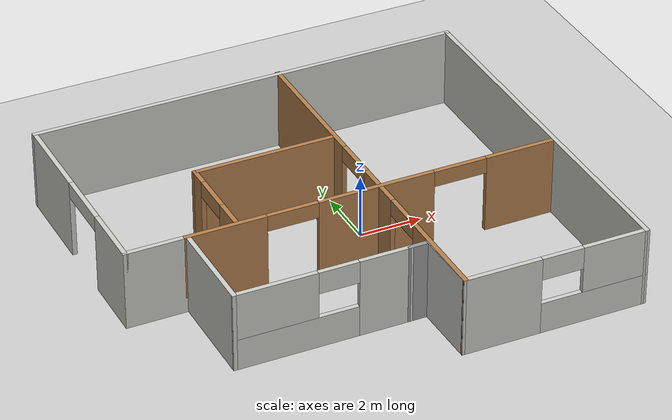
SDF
<sdf version="1.6">
 <world name="default">
  <light name="sun" type="directional">
   <pose>0 0 10 0 -0 0</pose>
   <diffuse>0.8 0.8 0.8 1</diffuse>
   <specular>0.2 0.2 0.2 1</specular>
   <attenuation>
    <range>1000</range>
    <constant>0.9</constant>
    <linear>0.01</linear>
    <quadratic>0.001</quadratic>
   </attenuation>
   <direction>-0.5 0.1 -0.9</direction>
  </light>
  <model name="ground_plane">
   <static>1</static>
   <link name="link">
    <collision name="collision">
     <geometry><plane><normal>0 0 1</normal><size>100 100</size></plane></geometry>
     <surface>
      <contact><collide_bitmask>65535</collide_bitmask></contact>
      <friction><ode><mu>100</mu><mu2>50</mu2></ode></friction>
     </surface>
    </collision>
    <visual name="visual">
     <cast_shadows>0</cast_shadows>
     <geometry><plane><normal>0 0 1</normal><size>100 100</size></plane></geometry>
     <material>
      <script><uri>file://media/materials/scripts/gazebo.material</uri><name>Gazebo/Grey</name></script>
     </material>
    </visual>
   </link>
  </model>
  <gravity>0 0 -9.8</gravity>
  <magnetic_field>6e-06 2.3e-05 -4.2e-05</magnetic_field>
  <atmosphere type="adiabatic"/>
  <physics name="default_physics" default="0" type="ode">
   <max_step_size>0.001</max_step_size>
   <real_time_factor>1</real_time_factor>
   <real_time_update_rate>1000</real_time_update_rate>
  </physics>
  <scene><ambient>0.4 0.4 0.4 1</ambient><background>0.7 0.7 0.7 1</background><shadows>1</shadows></scene>
  <audio><device>default</device></audio>
  <spherical_coordinates>
   <surface_model>EARTH_WGS84</surface_model>
   <latitude_deg>0</latitude_deg>
   <longitude_deg>0</longitude_deg>
   <elevation>0</elevation>
   <heading_deg>0</heading_deg>
  </spherical_coordinates>
  <model name="hotel_raven">
   <pose>-1.09481 -0.450261 0 0 -0 0</pose>
   <link name="Wall_1">
    <collision name="Wall_1_Collision">
     <geometry><box><size>13.75 0.15 2.5</size></box></geometry>
     <pose>0 0 1.25 0 -0 0</pose>
    </collision>
    <visual name="Wall_1_Visual">
     <pose>0 0 1.25 0 -0 0</pose>
     <geometry><box><size>13.75 0.15 2.5</size></box></geometry>
     <material>
      <script><uri>file://media/materials/scripts/gazebo.material</uri><name>Gazebo/CeilingTiled</name></script>
      <ambient>0.435294 0.796078 0.67451 1</ambient>
     </material>
     <meta><layer>0</layer></meta>
    </visual>
    <pose>-0.000193 6.03026 0 0 -0 0</pose>
   </link>
   <link name="Wall_10">
    <collision name="Wall_10_Collision">
     <geometry><box><size>2 0.15 2.5</size></box></geometry>
     <pose>0 0 1.25 0 -0 0</pose>
    </collision>
    <visual name="Wall_10_Visual">
     <pose>0 0 1.25 0 -0 0</pose>
     <geometry><box><size>2 0.15 2.5</size></box></geometry>
     <material>
      <script><uri>file://media/materials/scripts/gazebo.material</uri><name>Gazebo/CeilingTiled</name></script>
      <ambient>0.435294 0.796078 0.67451 1</ambient>
     </material>
     <meta><layer>0</layer></meta>
    </visual>
    <pose>-5.87519 -0.819739 0 0 -0 0</pose>
   </link>
   <link name="Wall_13">
    <pose>1.08781 0.020261 0 0 -0 -1.5708</pose>
    <visual name="Wall_13_Visual_0">
     <pose>-3.79716 0 1.25 0 -0 0</pose>
     <geometry><box><size>4.65569 0.15 2.5</size></box></geometry>
     <material>
      <script><uri>file://media/materials/scripts/gazebo.material</uri><name>Gazebo/Wood</name></script>
      <ambient>1 1 1 1</ambient>
     </material>
     <meta><layer>0</layer></meta>
    </visual>
    <collision name="Wall_13_Collision_0">
     <geometry><box><size>4.65569 0.15 2.5</size></box></geometry>
     <pose>-3.79716 0 1.25 0 -0 0</pose>
    </collision>
    <visual name="Wall_13_Visual_1">
     <pose>0.816104 0 1.25 0 -0 0</pose>
     <geometry><box><size>1.70682 0.15 2.5</size></box></geometry>
     <material>
      <script><uri>file://media/materials/scripts/gazebo.material</uri><name>Gazebo/Wood</name></script>
      <ambient>1 1 1 1</ambient>
     </material>
     <meta><layer>0</layer></meta>
    </visual>
    <collision name="Wall_13_Collision_1">
     <geometry><box><size>1.70682 0.15 2.5</size></box></geometry>
     <pose>0.816104 0 1.25 0 -0 0</pose>
    </collision>
    <visual name="Wall_13_Visual_2">
     <pose>4.58666 0 1.25 0 -0 0</pose>
     <geometry><box><size>3.07668 0.15 2.5</size></box></geometry>
     <material>
      <script><uri>file://media/materials/scripts/gazebo.material</uri><name>Gazebo/Wood</name></script>
      <ambient>1 1 1 1</ambient>
     </material>
     <meta><layer>0</layer></meta>
    </visual>
    <collision name="Wall_13_Collision_2">
     <geometry><box><size>3.07668 0.15 2.5</size></box></geometry>
     <pose>4.58666 0 1.25 0 -0 0</pose>
    </collision>
    <visual name="Wall_13_Visual_3">
     <pose>-0.753308 0 2.25 0 -0 0</pose>
     <geometry><box><size>1.432 0.15 0.5</size></box></geometry>
     <material>
      <script><uri>file://media/materials/scripts/gazebo.material</uri><name>Gazebo/Wood</name></script>
      <ambient>1 1 1 1</ambient>
     </material>
     <meta><layer>0</layer></meta>
    </visual>
    <collision name="Wall_13_Collision_3">
     <geometry><box><size>1.432 0.15 0.5</size></box></geometry>
     <pose>-0.753308 0 2.25 0 -0 0</pose>
    </collision>
    <visual name="Wall_13_Visual_4">
     <pose>2.35892 0 2.25 0 -0 0</pose>
     <geometry><box><size>1.3788 0.15 0.5</size></box></geometry>
     <material>
      <script><uri>file://media/materials/scripts/gazebo.material</uri><name>Gazebo/Wood</name></script>
      <ambient>1 1 1 1</ambient>
     </material>
     <meta><layer>0</layer></meta>
    </visual>
    <collision name="Wall_13_Collision_4">
     <geometry><box><size>1.3788 0.15 0.5</size></box></geometry>
     <pose>2.35892 0 2.25 0 -0 0</pose>
    </collision>
   </link>
   <link name="Wall_18">
    <collision name="Wall_18_Collision">
     <geometry><box><size>4.5 0.15 2.5</size></box></geometry>
     <pose>0 0 1.25 0 -0 0</pose>
    </collision>
    <visual name="Wall_18_Visual">
     <pose>0 0 1.25 0 -0 0</pose>
     <geometry><box><size>4.5 0.15 2.5</size></box></geometry>
     <material>
      <script><uri>file://media/materials/scripts/gazebo.material</uri><name>Gazebo/Wood</name></script>
      <ambient>1 1 1 1</ambient>
     </material>
     <meta><layer>0</layer></meta>
    </visual>
    <pose>-1.20919 2.12426 0 0 -0 3.14159</pose>
   </link>
   <link name="Wall_19">
    <pose>-3.38419 0.699261 0 0 -0 -1.5708</pose>
    <visual name="Wall_19_Visual_0">
     <pose>-1.17182 0 1.25 0 -0 0</pose>
     <geometry><box><size>0.656351 0.15 2.5</size></box></geometry>
     <material>
      <script><uri>file://media/materials/scripts/gazebo.material</uri><name>Gazebo/Wood</name></script>
      <ambient>1 1 1 1</ambient>
     </material>
     <meta><layer>0</layer></meta>
    </visual>
    <collision name="Wall_19_Collision_0">
     <geometry><box><size>0.656351 0.15 2.5</size></box></geometry>
     <pose>-1.17182 0 1.25 0 -0 0</pose>
    </collision>
    <visual name="Wall_19_Visual_1">
     <pose>0.977677 0 1.25 0 -0 0</pose>
     <geometry><box><size>1.04465 0.15 2.5</size></box></geometry>
     <material>
      <script><uri>file://media/materials/scripts/gazebo.material</uri><name>Gazebo/Wood</name></script>
      <ambient>1 1 1 1</ambient>
     </material>
     <meta><layer>0</layer></meta>
    </visual>
    <collision name="Wall_19_Collision_1">
     <geometry><box><size>1.04465 0.15 2.5</size></box></geometry>
     <pose>0.977677 0 1.25 0 -0 0</pose>
    </collision>
    <visual name="Wall_19_Visual_2">
     <pose>-0.194148 0 2.25 0 -0 0</pose>
     <geometry><box><size>1.299 0.15 0.5</size></box></geometry>
     <material>
      <script><uri>file://media/materials/scripts/gazebo.material</uri><name>Gazebo/Wood</name></script>
      <ambient>1 1 1 1</ambient>
     </material>
     <meta><layer>0</layer></meta>
    </visual>
    <collision name="Wall_19_Collision_2">
     <geometry><box><size>1.299 0.15 0.5</size></box></geometry>
     <pose>-0.194148 0 2.25 0 -0 0</pose>
    </collision>
   </link>
   <link name="Wall_2">
    <collision name="Wall_2_Collision">
     <geometry><box><size>12.25 0.15 2.5</size></box></geometry>
     <pose>0 0 1.25 0 -0 0</pose>
    </collision>
    <visual name="Wall_2_Visual">
     <pose>0 0 1.25 0 -0 0</pose>
     <geometry><box><size>12.25 0.15 2.5</size></box></geometry>
     <material>
      <script><uri>file://media/materials/scripts/gazebo.material</uri><name>Gazebo/CeilingTiled</name></script>
      <ambient>0.435294 0.796078 0.67451 1</ambient>
     </material>
     <meta><layer>0</layer></meta>
    </visual>
    <pose>6.79981 -0.019739 0 0 -0 -1.5708</pose>
   </link>
   <link name="Wall_23">
    <collision name="Wall_23_Collision">
     <geometry><box><size>0.75 0.15 2.5</size></box></geometry>
     <pose>0 0 1.25 0 -0 0</pose>
    </collision>
    <visual name="Wall_23_Visual">
     <pose>0 0 1.25 0 -0 0</pose>
     <geometry><box><size>0.75 0.15 2.5</size></box></geometry>
     <material>
      <script><uri>file://media/materials/scripts/gazebo.material</uri><name>Gazebo/Grey</name></script>
      <ambient>1 1 1 1</ambient>
     </material>
     <meta><layer>0</layer></meta>
    </visual>
    <pose>0.749807 -3.96974 0 0 -0 0</pose>
   </link>
   <link name="Wall_24">
    <collision name="Wall_24_Collision">
     <geometry><box><size>2.21115 0.15 2.5</size></box></geometry>
     <pose>0 0 1.25 0 -0 0</pose>
    </collision>
    <visual name="Wall_24_Visual">
     <pose>0 0 1.25 0 -0 0</pose>
     <geometry><box><size>2.21115 0.15 2.5</size></box></geometry>
     <material>
      <script><uri>file://media/materials/scripts/gazebo.material</uri><name>Gazebo/CeilingTiled</name></script>
      <ambient>0.435294 0.796078 0.67451 1</ambient>
     </material>
     <meta><layer>0</layer></meta>
    </visual>
    <pose>1.06881 -4.99974 0 0 -0 -1.55235</pose>
   </link>
   <link name="Wall_25">
    <pose>3.94381 -6.04974 0 0 -0 -0.007003</pose>
    <visual name="Wall_25_Visual_0">
     <pose>-1.70058 0 1.25 0 -0 0</pose>
     <geometry><box><size>2.46071 0.15 2.5</size></box></geometry>
     <material>
      <script><uri>file://media/materials/scripts/gazebo.material</uri><name>Gazebo/CeilingTiled</name></script>
      <ambient>0.435294 0.796078 0.67451 1</ambient>
     </material>
     <meta><layer>0</layer></meta>
    </visual>
    <collision name="Wall_25_Collision_0">
     <geometry><box><size>2.46071 0.15 2.5</size></box></geometry>
     <pose>-1.70058 0 1.25 0 -0 0</pose>
    </collision>
    <visual name="Wall_25_Visual_1">
     <pose>1.23036 0 0.5 0 -0 0</pose>
     <geometry><box><size>3.40115 0.15 1</size></box></geometry>
     <material>
      <script><uri>file://media/materials/scripts/gazebo.material</uri><name>Gazebo/CeilingTiled</name></script>
      <ambient>0.435294 0.796078 0.67451 1</ambient>
     </material>
     <meta><layer>0</layer></meta>
    </visual>
    <collision name="Wall_25_Collision_1">
     <geometry><box><size>3.40115 0.15 1</size></box></geometry>
     <pose>1.23036 0 0.5 0 -0 0</pose>
    </collision>
    <visual name="Wall_25_Visual_2">
     <pose>1.88285 0 1.75 0 -0 0</pose>
     <geometry><box><size>2.09615 0.15 1.5</size></box></geometry>
     <material>
      <script><uri>file://media/materials/scripts/gazebo.material</uri><name>Gazebo/CeilingTiled</name></script>
      <ambient>0.435294 0.796078 0.67451 1</ambient>
     </material>
     <meta><layer>0</layer></meta>
    </visual>
    <collision name="Wall_25_Collision_2">
     <geometry><box><size>2.09615 0.15 1.5</size></box></geometry>
     <pose>1.88285 0 1.75 0 -0 0</pose>
    </collision>
    <visual name="Wall_25_Visual_3">
     <pose>0.182278 0 2.15 0 -0 0</pose>
     <geometry><box><size>1.305 0.15 0.7</size></box></geometry>
     <material>
      <script><uri>file://media/materials/scripts/gazebo.material</uri><name>Gazebo/CeilingTiled</name></script>
      <ambient>0.435294 0.796078 0.67451 1</ambient>
     </material>
     <meta><layer>0</layer></meta>
    </visual>
    <collision name="Wall_25_Collision_3">
     <geometry><box><size>1.305 0.15 0.7</size></box></geometry>
     <pose>0.182278 0 2.15 0 -0 0</pose>
    </collision>
   </link>
   <link name="Wall_27">
    <pose>0.849807 -0.819739 0 0 -0 0</pose>
    <visual name="Wall_27_Visual_0">
     <pose>-4.60158 0 1.25 0 -0 0</pose>
     <geometry><box><size>2.54684 0.15 2.5</size></box></geometry>
     <material>
      <script><uri>file://media/materials/scripts/gazebo.material</uri><name>Gazebo/Wood</name></script>
      <ambient>1 1 1 1</ambient>
     </material>
     <meta><layer>0</layer></meta>
    </visual>
    <collision name="Wall_27_Collision_0">
     <geometry><box><size>2.54684 0.15 2.5</size></box></geometry>
     <pose>-4.60158 0 1.25 0 -0 0</pose>
    </collision>
    <visual name="Wall_27_Visual_1">
     <pose>0.1194 0 1.25 0 -0 0</pose>
     <geometry><box><size>3.68798 0.15 2.5</size></box></geometry>
     <material>
      <script><uri>file://media/materials/scripts/gazebo.material</uri><name>Gazebo/Wood</name></script>
      <ambient>1 1 1 1</ambient>
     </material>
     <meta><layer>0</layer></meta>
    </visual>
    <collision name="Wall_27_Collision_1">
     <geometry><box><size>3.68798 0.15 2.5</size></box></geometry>
     <pose>0.1194 0 1.25 0 -0 0</pose>
    </collision>
    <visual name="Wall_27_Visual_2">
     <pose>4.76687 0 1.25 0 -0 0</pose>
     <geometry><box><size>2.21627 0.15 2.5</size></box></geometry>
     <material>
      <script><uri>file://media/materials/scripts/gazebo.material</uri><name>Gazebo/Wood</name></script>
      <ambient>1 1 1 1</ambient>
     </material>
     <meta><layer>0</layer></meta>
    </visual>
    <collision name="Wall_27_Collision_2">
     <geometry><box><size>2.21627 0.15 2.5</size></box></geometry>
     <pose>4.76687 0 1.25 0 -0 0</pose>
    </collision>
    <visual name="Wall_27_Visual_3">
     <pose>-2.52638 0 2.25 0 -0 0</pose>
     <geometry><box><size>1.60357 0.15 0.5</size></box></geometry>
     <material>
      <script><uri>file://media/materials/scripts/gazebo.material</uri><name>Gazebo/Wood</name></script>
      <ambient>1 1 1 1</ambient>
     </material>
     <meta><layer>0</layer></meta>
    </visual>
    <collision name="Wall_27_Collision_3">
     <geometry><box><size>1.60357 0.15 0.5</size></box></geometry>
     <pose>-2.52638 0 2.25 0 -0 0</pose>
    </collision>
    <visual name="Wall_27_Visual_4">
     <pose>2.81106 0 2.25 0 -0 0</pose>
     <geometry><box><size>1.69535 0.15 0.5</size></box></geometry>
     <material>
      <script><uri>file://media/materials/scripts/gazebo.material</uri><name>Gazebo/Wood</name></script>
      <ambient>1 1 1 1</ambient>
     </material>
     <meta><layer>0</layer></meta>
    </visual>
    <collision name="Wall_27_Collision_4">
     <geometry><box><size>1.69535 0.15 0.5</size></box></geometry>
     <pose>2.81106 0 2.25 0 -0 0</pose>
    </collision>
   </link>
   <link name="Wall_5">
    <pose>-2.22519 -3.95624 0 0 -0 3.13655</pose>
    <visual name="Wall_5_Visual_0">
     <pose>-1.92434 0 1.25 0 -0 0</pose>
     <geometry><box><size>1.65132 0.15 2.5</size></box></geometry>
     <material>
      <script><uri>file://media/materials/scripts/gazebo.material</uri><name>Gazebo/CeilingTiled</name></script>
      <ambient>0.435294 0.796078 0.67451 1</ambient>
     </material>
     <meta><layer>0</layer></meta>
    </visual>
    <collision name="Wall_5_Collision_0">
     <geometry><box><size>1.65132 0.15 2.5</size></box></geometry>
     <pose>-1.92434 0 1.25 0 -0 0</pose>
    </collision>
    <visual name="Wall_5_Visual_1">
     <pose>0.825661 0 0.5 0 -0 0</pose>
     <geometry><box><size>3.84868 0.15 1</size></box></geometry>
     <material>
      <script><uri>file://media/materials/scripts/gazebo.material</uri><name>Gazebo/CeilingTiled</name></script>
      <ambient>0.435294 0.796078 0.67451 1</ambient>
     </material>
     <meta><layer>0</layer></meta>
    </visual>
    <collision name="Wall_5_Collision_1">
     <geometry><box><size>3.84868 0.15 1</size></box></geometry>
     <pose>0.825661 0 0.5 0 -0 0</pose>
    </collision>
    <visual name="Wall_5_Visual_2">
     <pose>1.45166 0 1.75 0 -0 0</pose>
     <geometry><box><size>2.59668 0.15 1.5</size></box></geometry>
     <material>
      <script><uri>file://media/materials/scripts/gazebo.material</uri><name>Gazebo/CeilingTiled</name></script>
      <ambient>0.435294 0.796078 0.67451 1</ambient>
     </material>
     <meta><layer>0</layer></meta>
    </visual>
    <collision name="Wall_5_Collision_2">
     <geometry><box><size>2.59668 0.15 1.5</size></box></geometry>
     <pose>1.45166 0 1.75 0 -0 0</pose>
    </collision>
    <visual name="Wall_5_Visual_3">
     <pose>-0.472679 0 2.15 0 -0 0</pose>
     <geometry><box><size>1.252 0.15 0.7</size></box></geometry>
     <material>
      <script><uri>file://media/materials/scripts/gazebo.material</uri><name>Gazebo/CeilingTiled</name></script>
      <ambient>0.435294 0.796078 0.67451 1</ambient>
     </material>
     <meta><layer>0</layer></meta>
    </visual>
    <collision name="Wall_5_Collision_3">
     <geometry><box><size>1.252 0.15 0.7</size></box></geometry>
     <pose>-0.472679 0 2.15 0 -0 0</pose>
    </collision>
   </link>
   <link name="Wall_6">
    <collision name="Wall_6_Collision">
     <geometry><box><size>3.25049 0.15 2.5</size></box></geometry>
     <pose>0 0 1.25 0 -0 0</pose>
    </collision>
    <visual name="Wall_6_Visual">
     <pose>0 0 1.25 0 -0 0</pose>
     <geometry><box><size>3.25049 0.15 2.5</size></box></geometry>
     <material>
      <script><uri>file://media/materials/scripts/gazebo.material</uri><name>Gazebo/CeilingTiled</name></script>
      <ambient>0.435294 0.796078 0.67451 1</ambient>
     </material>
     <meta><layer>0</layer></meta>
    </visual>
    <pose>-4.90019 -2.39274 0 0 -0 1.5708</pose>
   </link>
   <link name="Wall_9">
    <pose>-6.80019 2.60526 0 0 -0 -1.5708</pose>
    <visual name="Wall_9_Visual_0">
     <pose>-2.02688 0 1.25 0 -0 0</pose>
     <geometry><box><size>2.94623 0.15 2.5</size></box></geometry>
     <material>
      <script><uri>file://media/materials/scripts/gazebo.material</uri><name>Gazebo/CeilingTiled</name></script>
      <ambient>0.435294 0.796078 0.67451 1</ambient>
     </material>
     <meta><layer>0</layer></meta>
    </visual>
    <collision name="Wall_9_Collision_0">
     <geometry><box><size>2.94623 0.15 2.5</size></box></geometry>
     <pose>-2.02688 0 1.25 0 -0 0</pose>
    </collision>
    <visual name="Wall_9_Visual_1">
     <pose>2.44315 0 1.25 0 -0 0</pose>
     <geometry><box><size>2.1137 0.15 2.5</size></box></geometry>
     <material>
      <script><uri>file://media/materials/scripts/gazebo.material</uri><name>Gazebo/CeilingTiled</name></script>
      <ambient>0.435294 0.796078 0.67451 1</ambient>
     </material>
     <meta><layer>0</layer></meta>
    </visual>
    <collision name="Wall_9_Collision_1">
     <geometry><box><size>2.1137 0.15 2.5</size></box></geometry>
     <pose>2.44315 0 1.25 0 -0 0</pose>
    </collision>
    <visual name="Wall_9_Visual_2">
     <pose>0.416266 0 2.25 0 -0 0</pose>
     <geometry><box><size>1.94007 0.15 0.5</size></box></geometry>
     <material>
      <script><uri>file://media/materials/scripts/gazebo.material</uri><name>Gazebo/CeilingTiled</name></script>
      <ambient>0.435294 0.796078 0.67451 1</ambient>
     </material>
     <meta><layer>0</layer></meta>
    </visual>
    <collision name="Wall_9_Collision_2">
     <geometry><box><size>1.94007 0.15 0.5</size></box></geometry>
     <pose>0.416266 0 2.25 0 -0 0</pose>
    </collision>
   </link>
   <static>1</static>
  </model>
  <joint name="hokuyo_joint" type="fixed"><child>hokuyo_link</child><parent>chassis</parent></joint>
  <gazebo reference="hokuyo_link">
   <material>Gazebo/Blue</material>
   <sensor name="head_hokuyo_sensor" type="ray">
    <pose>0.05 0 0 0 0 0</pose>
    <visualize>true</visualize>
    <update_rate>40</update_rate>
    <ray>
     <scan>
      <horizontal>
       <samples>720</samples>
       <resolution>1</resolution>
       <min_angle>-1.570796</min_angle>
       <max_angle>1.570796</max_angle>
      </horizontal>
     </scan>
     <range><min>0.10</min><max>10.0</max><resolution>0.001</resolution></range>
    </ray>
    <plugin filename="libgazebo_ros_laser.so" name="gazebo_ros_head_hokuyo_controller">
     <topicName>/scan</topicName>
     <frameName>hokuyo_link</frameName>
    </plugin>
   </sensor>
  </gazebo>
 </world>
</sdf>
